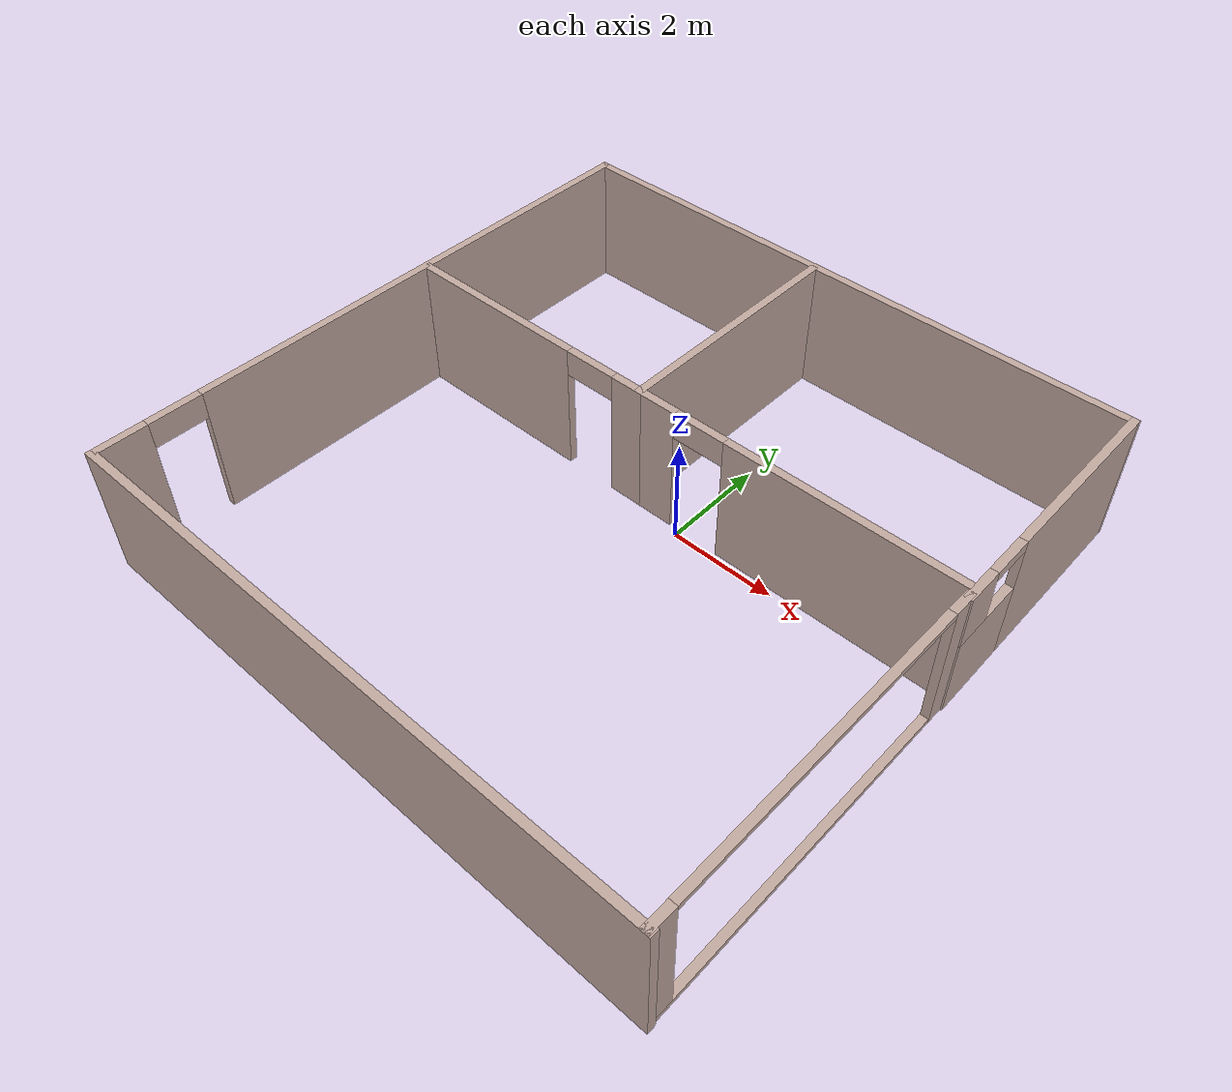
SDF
<?xml version='1.0'?>
<sdf version='1.7'>
  <model name='buildingFrst'>
    <pose>-0.468873 -0.863059 0 0 -0 0</pose>
    <link name='Wall_0'>
      <collision name='Wall_0_Collision'>
        <geometry>
          <box>
            <size>11.5 0.15 2.5</size>
          </box>
        </geometry>
        <pose>0 0 1.25 0 -0 0</pose>
      </collision>
      <visual name='Wall_0_Visual'>
        <pose>0 0 1.25 0 -0 0</pose>
        <geometry>
          <box>
            <size>11.5 0.15 2.5</size>
          </box>
        </geometry>
        <material>
          <script>
            <uri>file://media/materials/scripts/gazebo.material</uri>
            <name>Gazebo/Grey</name>
          </script>
          <ambient>0.760784 0.662745 0.627451 1</ambient>
        </material>
        <meta>
          <layer>0</layer>
        </meta>
      </visual>
      <pose>-0.026856 5.72467 0 0 -0 0</pose>
    </link>
    <link name='Wall_1'>
      <pose>5.67459 3.29967 0 0 -0 -1.55989</pose>
      <visual name='Wall_1_Visual_0'>
        <pose>-0.750263 0 1.25 0 -0 0</pose>
        <geometry>
          <box>
            <size>3.49947 0.15 2.5</size>
          </box>
        </geometry>
        <material>
          <script>
            <uri>file://media/materials/scripts/gazebo.material</uri>
            <name>Gazebo/Grey</name>
          </script>
          <ambient>0.760784 0.662745 0.627451 1</ambient>
        </material>
        <meta>
          <layer>0</layer>
        </meta>
      </visual>
      <collision name='Wall_1_Collision_0'>
        <geometry>
          <box>
            <size>3.49947 0.15 2.5</size>
          </box>
        </geometry>
        <pose>-0.750263 0 1.25 0 -0 0</pose>
      </collision>
      <visual name='Wall_1_Visual_1'>
        <pose>1.74974 0 0.75 0 -0 0</pose>
        <geometry>
          <box>
            <size>1.50053 0.15 1.5</size>
          </box>
        </geometry>
        <material>
          <script>
            <uri>file://media/materials/scripts/gazebo.material</uri>
            <name>Gazebo/Grey</name>
          </script>
          <ambient>0.760784 0.662745 0.627451 1</ambient>
        </material>
        <meta>
          <layer>0</layer>
        </meta>
      </visual>
      <collision name='Wall_1_Collision_1'>
        <geometry>
          <box>
            <size>1.50053 0.15 1.5</size>
          </box>
        </geometry>
        <pose>1.74974 0 0.75 0 -0 0</pose>
      </collision>
      <visual name='Wall_1_Visual_2'>
        <pose>2.14974 0 2 0 -0 0</pose>
        <geometry>
          <box>
            <size>0.700527 0.15 1</size>
          </box>
        </geometry>
        <material>
          <script>
            <uri>file://media/materials/scripts/gazebo.material</uri>
            <name>Gazebo/Grey</name>
          </script>
          <ambient>0.760784 0.662745 0.627451 1</ambient>
        </material>
        <meta>
          <layer>0</layer>
        </meta>
      </visual>
      <collision name='Wall_1_Collision_2'>
        <geometry>
          <box>
            <size>0.700527 0.15 1</size>
          </box>
        </geometry>
        <pose>2.14974 0 2 0 -0 0</pose>
      </collision>
      <visual name='Wall_1_Visual_3'>
        <pose>1.39947 0 2.4 0 -0 0</pose>
        <geometry>
          <box>
            <size>0.8 0.15 0.2</size>
          </box>
        </geometry>
        <material>
          <script>
            <uri>file://media/materials/scripts/gazebo.material</uri>
            <name>Gazebo/Grey</name>
          </script>
          <ambient>0.760784 0.662745 0.627451 1</ambient>
        </material>
        <meta>
          <layer>0</layer>
        </meta>
      </visual>
      <collision name='Wall_1_Collision_3'>
        <geometry>
          <box>
            <size>0.8 0.15 0.2</size>
          </box>
        </geometry>
        <pose>1.39947 0 2.4 0 -0 0</pose>
      </collision>
    </link>
    <link name='Wall_10'>
      <pose>2.5097 1.04178 0 0 -0 0</pose>
      <visual name='Wall_10_Visual_0'>
        <pose>-2.69873 0 1.25 0 -0 0</pose>
        <geometry>
          <box>
            <size>0.852535 0.15 2.5</size>
          </box>
        </geometry>
        <material>
          <script>
            <uri>file://media/materials/scripts/gazebo.material</uri>
            <name>Gazebo/Grey</name>
          </script>
          <ambient>0.760784 0.662745 0.627451 1</ambient>
        </material>
        <meta>
          <layer>0</layer>
        </meta>
      </visual>
      <collision name='Wall_10_Collision_0'>
        <geometry>
          <box>
            <size>0.852535 0.15 2.5</size>
          </box>
        </geometry>
        <pose>-2.69873 0 1.25 0 -0 0</pose>
      </collision>
      <visual name='Wall_10_Visual_1'>
        <pose>0.926267 0 1.25 0 -0 0</pose>
        <geometry>
          <box>
            <size>4.39747 0.15 2.5</size>
          </box>
        </geometry>
        <material>
          <script>
            <uri>file://media/materials/scripts/gazebo.material</uri>
            <name>Gazebo/Grey</name>
          </script>
          <ambient>0.760784 0.662745 0.627451 1</ambient>
        </material>
        <meta>
          <layer>0</layer>
        </meta>
      </visual>
      <collision name='Wall_10_Collision_1'>
        <geometry>
          <box>
            <size>4.39747 0.15 2.5</size>
          </box>
        </geometry>
        <pose>0.926267 0 1.25 0 -0 0</pose>
      </collision>
      <visual name='Wall_10_Visual_2'>
        <pose>-1.77246 0 2.25 0 -0 0</pose>
        <geometry>
          <box>
            <size>1 0.15 0.5</size>
          </box>
        </geometry>
        <material>
          <script>
            <uri>file://media/materials/scripts/gazebo.material</uri>
            <name>Gazebo/Grey</name>
          </script>
          <ambient>0.760784 0.662745 0.627451 1</ambient>
        </material>
        <meta>
          <layer>0</layer>
        </meta>
      </visual>
      <collision name='Wall_10_Collision_2'>
        <geometry>
          <box>
            <size>1 0.15 0.5</size>
          </box>
        </geometry>
        <pose>-1.77246 0 2.25 0 -0 0</pose>
      </collision>
    </link>
    <link name='Wall_12'>
      <pose>-3.0903 1.04178 0 0 -0 3.14159</pose>
      <visual name='Wall_12_Visual_0'>
        <pose>-2.30253 0 1.25 0 -0 0</pose>
        <geometry>
          <box>
            <size>0.644939 0.15 2.5</size>
          </box>
        </geometry>
        <material>
          <script>
            <uri>file://media/materials/scripts/gazebo.material</uri>
            <name>Gazebo/Grey</name>
          </script>
          <ambient>0.760784 0.662745 0.627451 1</ambient>
        </material>
        <meta>
          <layer>0</layer>
        </meta>
      </visual>
      <collision name='Wall_12_Collision_0'>
        <geometry>
          <box>
            <size>0.644939 0.15 2.5</size>
          </box>
        </geometry>
        <pose>-2.30253 0 1.25 0 -0 0</pose>
      </collision>
      <visual name='Wall_12_Visual_1'>
        <pose>0.822469 0 1.25 0 -0 0</pose>
        <geometry>
          <box>
            <size>3.60506 0.15 2.5</size>
          </box>
        </geometry>
        <material>
          <script>
            <uri>file://media/materials/scripts/gazebo.material</uri>
            <name>Gazebo/Grey</name>
          </script>
          <ambient>0.760784 0.662745 0.627451 1</ambient>
        </material>
        <meta>
          <layer>0</layer>
        </meta>
      </visual>
      <collision name='Wall_12_Collision_1'>
        <geometry>
          <box>
            <size>3.60506 0.15 2.5</size>
          </box>
        </geometry>
        <pose>0.822469 0 1.25 0 -0 0</pose>
      </collision>
      <visual name='Wall_12_Visual_2'>
        <pose>-1.48006 0 2.25 0 -0 0</pose>
        <geometry>
          <box>
            <size>1 0.15 0.5</size>
          </box>
        </geometry>
        <material>
          <script>
            <uri>file://media/materials/scripts/gazebo.material</uri>
            <name>Gazebo/Grey</name>
          </script>
          <ambient>0.760784 0.662745 0.627451 1</ambient>
        </material>
        <meta>
          <layer>0</layer>
        </meta>
      </visual>
      <collision name='Wall_12_Collision_2'>
        <geometry>
          <box>
            <size>1 0.15 0.5</size>
          </box>
        </geometry>
        <pose>-1.48006 0 2.25 0 -0 0</pose>
      </collision>
    </link>
    <link name='Wall_2'>
      <pose>5.67459 -2.42533 0 0 -0 -1.5708</pose>
      <visual name='Wall_2_Visual_0'>
        <pose>-3.13371 0 1.25 0 -0 0</pose>
        <geometry>
          <box>
            <size>0.482587 0.15 2.5</size>
          </box>
        </geometry>
        <material>
          <script>
            <uri>file://media/materials/scripts/gazebo.material</uri>
            <name>Gazebo/Grey</name>
          </script>
          <ambient>0.760784 0.662745 0.627451 1</ambient>
        </material>
        <meta>
          <layer>0</layer>
        </meta>
      </visual>
      <collision name='Wall_2_Collision_0'>
        <geometry>
          <box>
            <size>0.482587 0.15 2.5</size>
          </box>
        </geometry>
        <pose>-3.13371 0 1.25 0 -0 0</pose>
      </collision>
      <visual name='Wall_2_Visual_1'>
        <pose>0.241294 0 0.05 0 -0 0</pose>
        <geometry>
          <box>
            <size>6.26741 0.15 0.1</size>
          </box>
        </geometry>
        <material>
          <script>
            <uri>file://media/materials/scripts/gazebo.material</uri>
            <name>Gazebo/Grey</name>
          </script>
          <ambient>0.760784 0.662745 0.627451 1</ambient>
        </material>
        <meta>
          <layer>0</layer>
        </meta>
      </visual>
      <collision name='Wall_2_Collision_1'>
        <geometry>
          <box>
            <size>6.26741 0.15 0.1</size>
          </box>
        </geometry>
        <pose>0.241294 0 0.05 0 -0 0</pose>
      </collision>
      <visual name='Wall_2_Visual_2'>
        <pose>3.12629 0 1.3 0 -0 0</pose>
        <geometry>
          <box>
            <size>0.497413 0.15 2.4</size>
          </box>
        </geometry>
        <material>
          <script>
            <uri>file://media/materials/scripts/gazebo.material</uri>
            <name>Gazebo/Grey</name>
          </script>
          <ambient>0.760784 0.662745 0.627451 1</ambient>
        </material>
        <meta>
          <layer>0</layer>
        </meta>
      </visual>
      <collision name='Wall_2_Collision_2'>
        <geometry>
          <box>
            <size>0.497413 0.15 2.4</size>
          </box>
        </geometry>
        <pose>3.12629 0 1.3 0 -0 0</pose>
      </collision>
      <visual name='Wall_2_Visual_3'>
        <pose>-0.007413 0 2.45 0 -0 0</pose>
        <geometry>
          <box>
            <size>5.77 0.15 0.1</size>
          </box>
        </geometry>
        <material>
          <script>
            <uri>file://media/materials/scripts/gazebo.material</uri>
            <name>Gazebo/Grey</name>
          </script>
          <ambient>0.760784 0.662745 0.627451 1</ambient>
        </material>
        <meta>
          <layer>0</layer>
        </meta>
      </visual>
      <collision name='Wall_2_Collision_3'>
        <geometry>
          <box>
            <size>5.77 0.15 0.1</size>
          </box>
        </geometry>
        <pose>-0.007413 0 2.45 0 -0 0</pose>
      </collision>
    </link>
    <link name='Wall_4'>
      <pose>-5.70186 0.049666 0 0 -0 -1.5708</pose>
      <visual name='Wall_4_Visual_0'>
        <pose>-0.963006 0 1.25 0 -0 0</pose>
        <geometry>
          <box>
            <size>9.57399 0.15 2.5</size>
          </box>
        </geometry>
        <material>
          <script>
            <uri>file://media/materials/scripts/gazebo.material</uri>
            <name>Gazebo/Grey</name>
          </script>
          <ambient>0.760784 0.662745 0.627451 1</ambient>
        </material>
        <meta>
          <layer>0</layer>
        </meta>
      </visual>
      <collision name='Wall_4_Collision_0'>
        <geometry>
          <box>
            <size>9.57399 0.15 2.5</size>
          </box>
        </geometry>
        <pose>-0.963006 0 1.25 0 -0 0</pose>
      </collision>
      <visual name='Wall_4_Visual_1'>
        <pose>5.28699 0 1.25 0 -0 0</pose>
        <geometry>
          <box>
            <size>0.926012 0.15 2.5</size>
          </box>
        </geometry>
        <material>
          <script>
            <uri>file://media/materials/scripts/gazebo.material</uri>
            <name>Gazebo/Grey</name>
          </script>
          <ambient>0.760784 0.662745 0.627451 1</ambient>
        </material>
        <meta>
          <layer>0</layer>
        </meta>
      </visual>
      <collision name='Wall_4_Collision_1'>
        <geometry>
          <box>
            <size>0.926012 0.15 2.5</size>
          </box>
        </geometry>
        <pose>5.28699 0 1.25 0 -0 0</pose>
      </collision>
      <visual name='Wall_4_Visual_2'>
        <pose>4.32399 0 2.25 0 -0 0</pose>
        <geometry>
          <box>
            <size>1 0.15 0.5</size>
          </box>
        </geometry>
        <material>
          <script>
            <uri>file://media/materials/scripts/gazebo.material</uri>
            <name>Gazebo/Grey</name>
          </script>
          <ambient>0.760784 0.662745 0.627451 1</ambient>
        </material>
        <meta>
          <layer>0</layer>
        </meta>
      </visual>
      <collision name='Wall_4_Collision_2'>
        <geometry>
          <box>
            <size>1 0.15 0.5</size>
          </box>
        </geometry>
        <pose>4.32399 0 2.25 0 -0 0</pose>
      </collision>
    </link>
    <link name='Wall_7'>
      <collision name='Wall_7_Collision'>
        <geometry>
          <box>
            <size>11.5529 0.15 2.5</size>
          </box>
        </geometry>
        <pose>0 0 1.25 0 -0 0</pose>
      </collision>
      <visual name='Wall_7_Visual'>
        <pose>0 0 1.25 0 -0 0</pose>
        <geometry>
          <box>
            <size>11.5529 0.15 2.5</size>
          </box>
        </geometry>
        <material>
          <script>
            <uri>file://media/materials/scripts/gazebo.material</uri>
            <name>Gazebo/Grey</name>
          </script>
          <ambient>0.760784 0.662745 0.627451 1</ambient>
        </material>
        <meta>
          <layer>0</layer>
        </meta>
      </visual>
      <pose>-0.000406 -5.72534 0 0 -0 3.14159</pose>
    </link>
    <link name='Wall_9'>
      <collision name='Wall_9_Collision'>
        <geometry>
          <box>
            <size>4.75 0.15 2.5</size>
          </box>
        </geometry>
        <pose>0 0 1.25 0 -0 0</pose>
      </collision>
      <visual name='Wall_9_Visual'>
        <pose>0 0 1.25 0 -0 0</pose>
        <geometry>
          <box>
            <size>4.75 0.15 2.5</size>
          </box>
        </geometry>
        <material>
          <script>
            <uri>file://media/materials/scripts/gazebo.material</uri>
            <name>Gazebo/Grey</name>
          </script>
          <ambient>0.760784 0.662745 0.627451 1</ambient>
        </material>
        <meta>
          <layer>0</layer>
        </meta>
      </visual>
      <pose>-0.540303 3.34178 0 0 -0 -1.5708</pose>
    </link>
    <static>1</static>
  </model>
</sdf>
